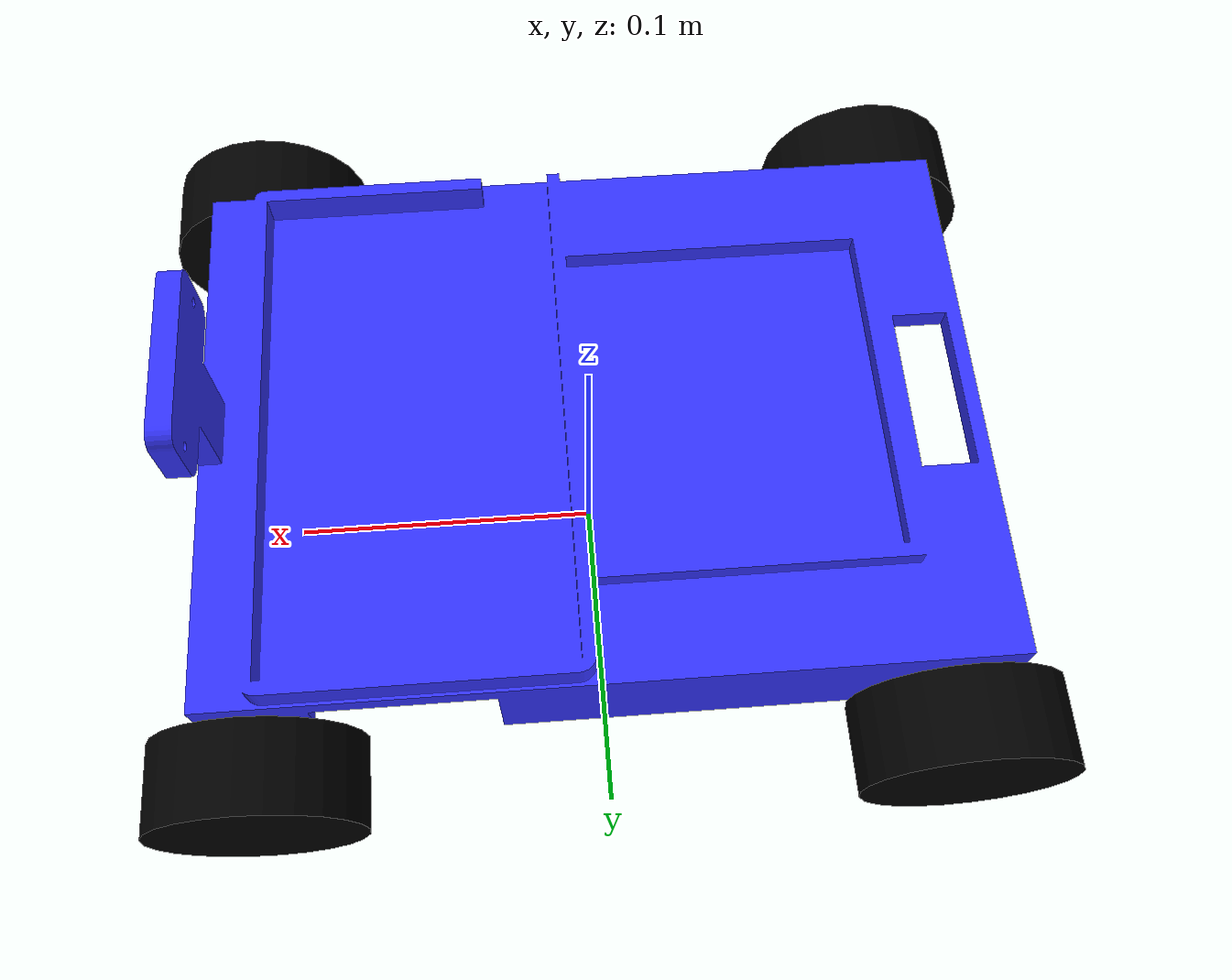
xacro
<?xml version="1.0"?>
<robot xmlns:xacro="http://www.ros.org/wiki/xacro" name="ana_robot">

    <xacro:include filename="inertial_macros.xacro"/>
    <xacro:property name="meshes_dir" value="/home/aidan/ros_ws/src/ana/meshes/" />

    <material name="white">
        <color rgba="1 1 1 1" />
    </material>

    <material name="orange">
        <color rgba="1 0.3 0.1 1" />
    </material>

    <material name="blue">
        <color rgba="0.2 0.2 1 1" />
    </material>

    <material name="black">
        <color rgba="0 0 0 1" />
    </material>

    <!-- CHASSIS LINK -->

    <link name="base_link">

    </link>

    <joint name="chassis_joint" type="fixed">
        <parent link="base_link"/>
        <child link="chassis"/>
        <origin xyz="-0.001 0 0"/>
    </joint>

    <link name="chassis">
        <visual>
            <origin xyz="0.1175 0.0835 0.0695"/> <!-- chassis location ajusted to be in the middle of the chassis -->
            <geometry>
                <mesh filename="package://ana/meshes/ana_chassis.stl" scale="0.001 0.001 0.001"/>
            </geometry>
            <material name="blue"/>
        </visual>
        <collision>
            <origin xyz="0.1175 0.0835 0.0695"/> <!-- chassis location ajusted to be in the middle of the chassis -->
            <geometry>
                <mesh filename="package://ana/meshes/ana_chassis.stl" scale="0.001 0.001 0.001"/>
            </geometry>
        </collision>
        <xacro:inertial_box mass="0.5" x="0.235" y="0.17" z="0.0"> <!-- kiligrams -->
            <origin xyz="0.1175 0.0835 0.0695" rpy="0 0 0"/>
        </xacro:inertial_box>
    </link>

    <gazebo reference="chassis">
        <material>Gazebo/Blue</material>
    </gazebo>

    <!-- FRONT LEFT WHEEL LINK -->

    <joint name="front_left_wheel_joint" type="continuous">
        <parent link="base_link"/>
        <child link="front_left_wheel"/>
        <origin xyz="0.104 0.0975 0.040" rpy="-1.5708 0 0"/>
        <axis xyz="0 0 1"/>
    </joint>

    <link name="front_left_wheel">
        <visual>
            <geometry>
                <cylinder radius="0.0325" length="0.027" />
            </geometry>
            <material name="black"/>
        </visual>
        <collision>
            <geometry>
                <sphere radius="0.0325"/>
            </geometry>
        </collision>
        <xacro:inertial_cylinder mass="0.1" length="0.027" radius = "0.0325">
            <origin xyz="0 0 0" rpy="0 0 0"/>
        </xacro:inertial_cylinder>
    </link>

    <gazebo reference="front_left_wheel">
        <material>Gazebo/Black</material>
    </gazebo>

    <!-- FRONT RIGHT WHEEL LINK -->

    <joint name="front_right_wheel_joint" type="continuous">
        <parent link="base_link"/>
        <child link="front_right_wheel"/>
        <origin xyz="0.104 -0.1005 0.040" rpy="1.5708 0 0"/>
        <axis xyz="0 0 -1"/>
    </joint>

    <link name="front_right_wheel">
        <visual>
            <geometry>
                <cylinder radius="0.0325" length="0.027" />
            </geometry>
            <material name="black"/>
        </visual>
        <collision>
            <geometry>
                <sphere radius="0.0325"/>
            </geometry>
        </collision>
        <xacro:inertial_cylinder mass="0.1" length="0.027" radius = "0.0325">
            <origin xyz="0 0 0" rpy="0 0 0"/>
        </xacro:inertial_cylinder>
    </link>

    <gazebo reference="front_right_wheel">
        <material>Gazebo/Black</material>
    </gazebo>

    <!-- BACK LEFT WHEEL LINK -->

    <joint name="back_left_wheel_joint" type="continuous">
        <parent link="base_link"/>
        <child link="back_left_wheel"/>
        <origin xyz="-0.104 0.0975 0.040" rpy="-1.5708 0 0"/>
        <axis xyz="0 0 1"/>
    </joint>

    <link name="back_left_wheel">
        <visual>
            <geometry>
                <cylinder radius="0.0325" length="0.027" />
            </geometry>
            <material name="black"/>
        </visual>
        <collision>
            <geometry>
                <sphere radius="0.0325"/>
            </geometry>
        </collision>
        <xacro:inertial_cylinder mass="0.1" length="0.027" radius = "0.0325">
            <origin xyz="0 0 0" rpy="0 0 0"/>
        </xacro:inertial_cylinder>
    </link>

    <gazebo reference="back_left_wheel">
        <material>Gazebo/Black</material>
        <!--friction does not want to work -->
    </gazebo>

    <!-- BACK RIGHT WHEEL LINK -->

    <joint name="back_right_wheel_joint" type="continuous">
        <parent link="base_link"/>
        <child link="back_right_wheel"/>
        <origin xyz="-0.104 -0.1005 0.040" rpy="1.5708 0 0"/>
        <axis xyz="0 0 -1"/>
    </joint>

    <link name="back_right_wheel">
        <visual>
            <geometry>
                <cylinder radius="0.0325" length="0.027" />
            </geometry>
            <material name="black"/>
        </visual>
        <collision>
            <geometry>
                <sphere radius="0.0325"/>
            </geometry>
        </collision>
        <xacro:inertial_cylinder mass="0.1" length="0.027" radius = "0.0325">
            <origin xyz="0 0 0" rpy="0 0 0"/>
        </xacro:inertial_cylinder>
    </link>

    <gazebo reference="back_right_wheel">
        <material>Gazebo/Black</material>
        <!--friction does not want to work -->
    </gazebo>

</robot>
